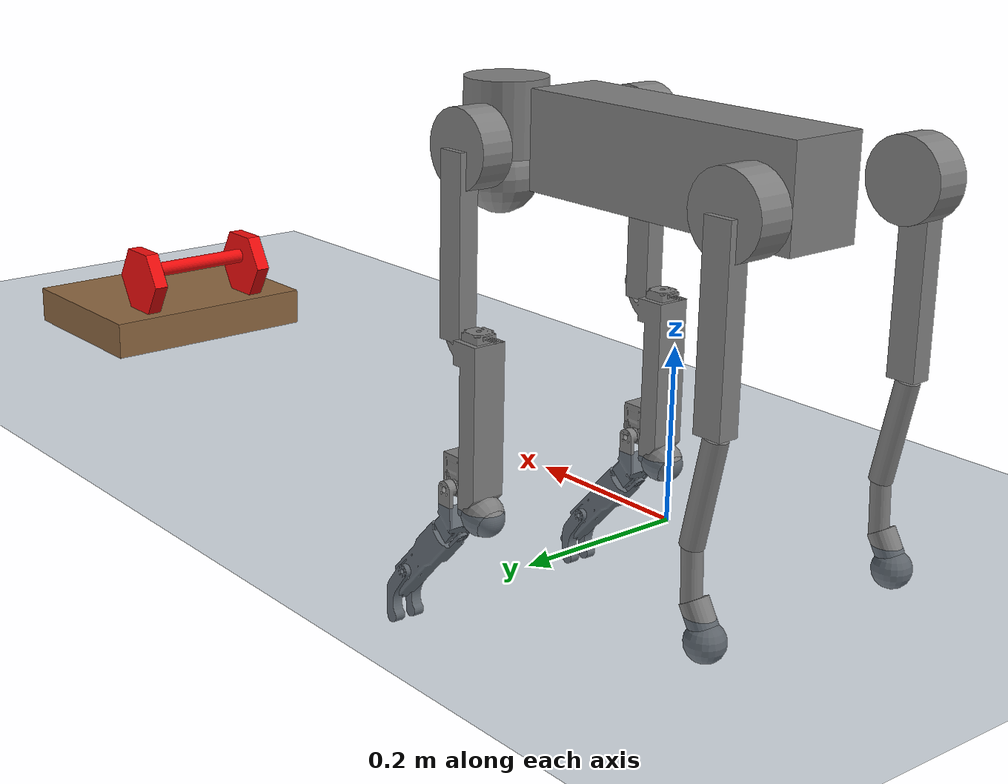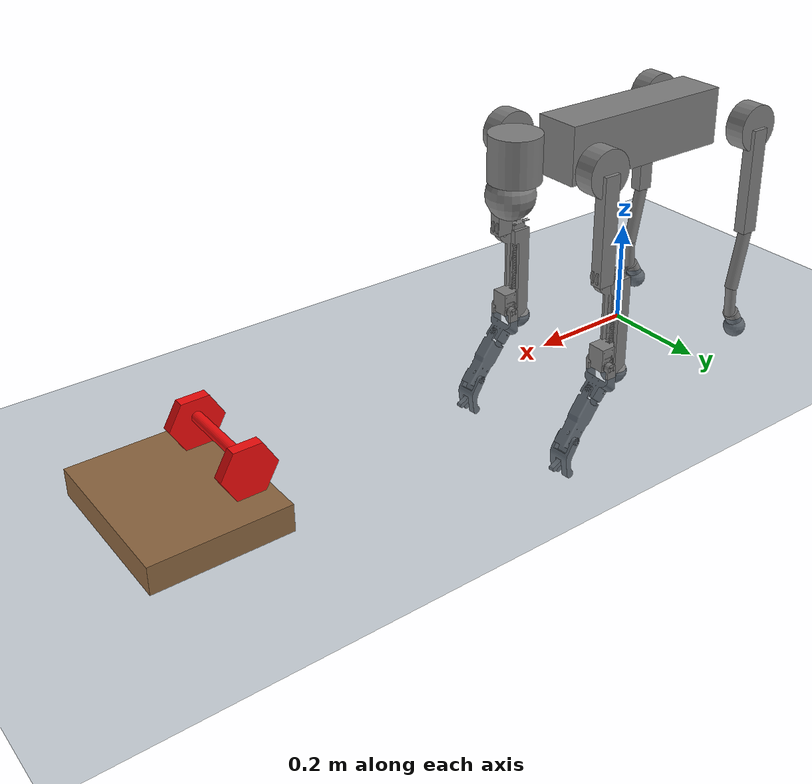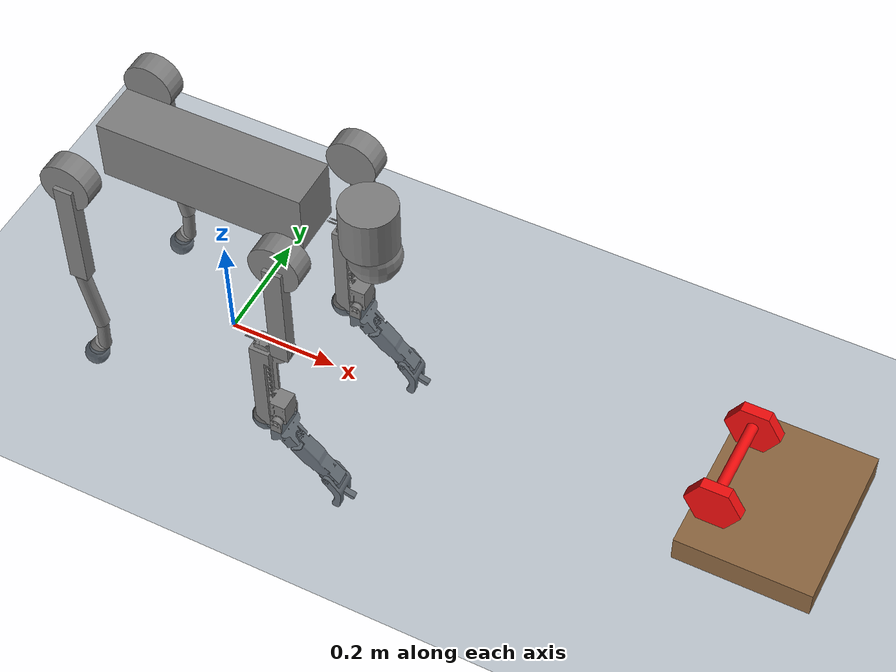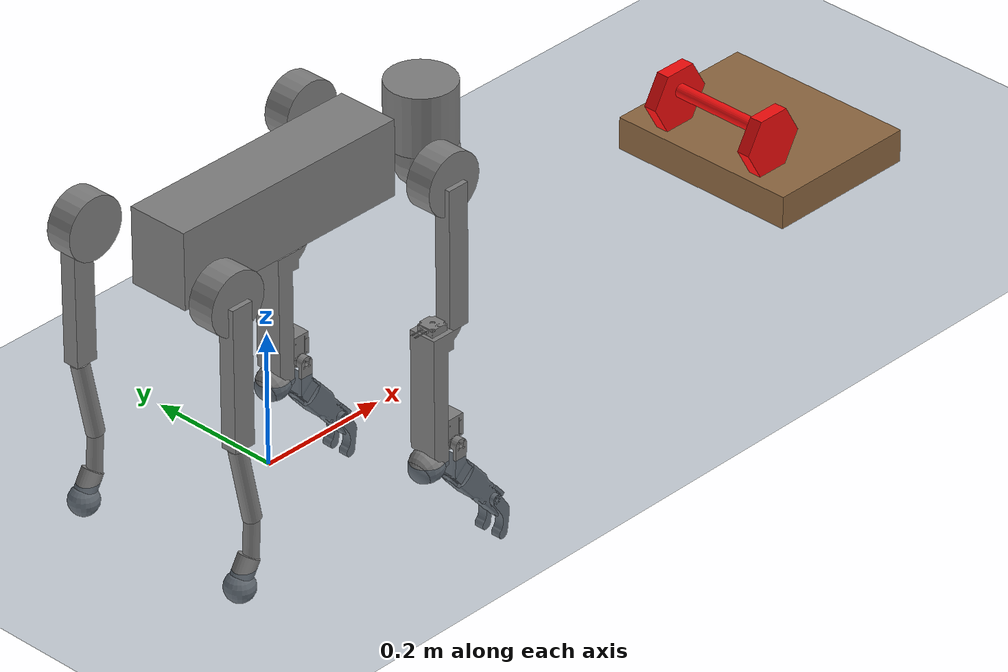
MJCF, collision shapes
<mujoco model="go2_with_diy_leg">
  <compiler angle="radian" meshdir="../" autolimits="true" />

  <option timestep="0.002" integrator="implicitfast" iterations="10" /><default><geom contype="1" conaffinity="1" friction="0.8 0.02 0.01" /></default><visual><headlight diffuse="0.6 0.6 0.6" ambient="0.3 0.3 0.3" specular="0 0 0" /><rgba haze="0.15 0.25 0.35 1" /><global azimuth="120" elevation="-20" offwidth="1280" offheight="720" /></visual><asset>
    <mesh name="base" content_type="model/obj" file="go2_description/obj/base.obj" />
    <mesh name="hip" content_type="model/obj" file="go2_description/obj/hip.obj" />
    <mesh name="thigh" content_type="model/obj" file="go2_description/obj/thigh.obj" />
    <mesh name="base_link" content_type="model/stl" file="meshes/base_link.STL" />
    <mesh name="link1" content_type="model/stl" file="meshes/link1.STL" />
    <mesh name="link2" content_type="model/stl" file="meshes/link2.STL" />
    <mesh name="link3" content_type="model/stl" file="meshes/link3.STL" />
    <mesh name="link4" content_type="model/stl" file="meshes/link4.STL" />
    <mesh name="foot" content_type="model/obj" file="go2_description/obj/foot.obj" scale="1.3 1.3 1.3" />
    <mesh name="thigh_mirror" content_type="model/obj" file="go2_description/obj/thigh_mirror.obj" />
    <mesh name="calf" content_type="model/obj" file="go2_description/obj/calf.obj" />
    <mesh name="foot1" content_type="model/obj" file="go2_description/obj/foot.obj" />
    <mesh name="calf_mirror" content_type="model/obj" file="go2_description/obj/calf_mirror.obj" />
  <texture type="skybox" builtin="gradient" rgb1="0.3 0.5 0.7" rgb2="0 0 0" width="512" height="3072" /><texture type="2d" name="groundplane" builtin="checker" mark="edge" rgb1="0.2 0.3 0.4" rgb2="0.1 0.2 0.3" markrgb="0.8 0.8 0.8" width="300" height="300" /><material name="groundplane" texture="groundplane" texuniform="true" texrepeat="5 5" reflectance="0.2" /><mesh name="hex_weight" file="/home/taie/Desktop/dog/mjc/hex_weight.stl" scale="1 1 0.33" /></asset>

  <worldbody>
    <geom name="floor" type="plane" size="0 0 0.05" material="groundplane" friction="0.8 0.02 0.01" /><light pos="0 0 1.5" dir="0 0 -1" directional="true" diffuse="0.8 0.8 0.8" specular="0.3 0.3 0.3" castshadow="true" /><body name="base" pos="0 0 0.4">
      <freejoint name="root" /><site name="imu" pos="-0.02557 0 0.04232" size="0.01" rgba="1 0 0 1" /><inertial pos="0.021112 0 -0.005366" quat="-0.000543471 0.713435 -0.00173769 0.700719" mass="6.921" diaginertia="0.107027 0.0980771 0.0244531" />
      <geom type="mesh" contype="0" conaffinity="0" group="1" density="0" mesh="base" />
      <geom size="0.1881 0.04675 0.057" type="box" />
      <body name="Head_upper" pos="0.285 0 0.01">
        <inertial pos="0 0 0" mass="0.001" diaginertia="9.6e-06 9.6e-06 9.6e-06" />
        <geom size="0.05 0.045" type="cylinder" />
        <body name="Head_lower" pos="0.008 0 -0.07">
          <inertial pos="0 0 0" mass="0.001" diaginertia="9.6e-06 9.6e-06 9.6e-06" />
          <geom size="0.047" />
        </body>
      <camera name="head_cam" pos="0.05 0 0.0" xyaxes="0 -1 0  0.574 0 0.819" fovy="75" /></body>
      <body name="FL_hip" pos="0.1934 0.0465 0">
        <inertial pos="-0.0054 0.00194 -0.000105" quat="0.497014 0.499245 0.505462 0.498237" mass="0.678" diaginertia="0.00088403 0.000596003 0.000479967" />
        <joint name="FL_hip_joint" pos="0 0 0" axis="1 0 0" range="-1.0472 1.0472" actuatorfrcrange="-23.7 23.7" />
        <geom type="mesh" contype="0" conaffinity="0" group="1" density="0" mesh="hip" />
        <geom size="0.046 0.02" pos="0 0.08 0" quat="0.707107 0.707107 0 0" type="cylinder" />
        <body name="FL_thigh" pos="0 0.0955 0">
          <inertial pos="-0.00374 -0.0223 -0.0327" quat="0.829533 0.0847635 -0.0200632 0.551623" mass="1.152" diaginertia="0.00594973 0.00584149 0.000878787" />
          <joint name="FL_thigh_joint" pos="0 0 0" axis="0 1 0" range="-1.5708 3.4907" actuatorfrcrange="-23.7 23.7" />
          <geom type="mesh" contype="0" conaffinity="0" group="1" density="0" mesh="thigh" />
          <geom size="0.1065 0.01225 0.017" pos="0 0 -0.1065" quat="0.707107 0 0.707107 0" type="box" />
          <body name="FL_diy_base_link" pos="0 -0.002 -0.212" quat="0.499998 0.5 0.5 -0.500002">
            <inertial pos="0.0943169 -0.0378878 1.09283e-07" quat="0.0343646 0.706271 -0.0343582 0.706272" mass="0.209324" diaginertia="0.000751999 0.000745837 6.62757e-05" />
            <joint name="FL_calf_joint" pos="0 0 0" axis="0 0 1" range="0.99 2.82" actuatorfrcrange="-45.43 45.43" />
            <geom type="mesh" contype="0" conaffinity="0" group="1" density="0" mesh="base_link" />
            <geom type="mesh" mesh="base_link" />
            <body name="FL_diy_link1" pos="0.022502 -0.034022 0">
              <inertial pos="0.129921 0.0176942 6.16693e-05" quat="0.107055 0.681122 -0.151292 0.708324" mass="0.0589547" diaginertia="1.49592e-05 1.38269e-05 1.14707e-05" />
              <joint name="FL_diy_joint1" pos="0 0 0" axis="-0.999999 -0.0012292 0" type="slide" range="0 0.105" actuatorfrcrange="-100 100" />
              <geom type="mesh" contype="0" conaffinity="0" group="1" density="0" mesh="link1" />
              <geom type="mesh" mesh="link1" />
              <body name="FL_diy_link2" pos="0.14708 0.022931 -0.0291">
                <inertial pos="0.040605 0.0074292 0.029" quat="0.629725 0 0 0.776818" mass="0.049272" diaginertia="2.51507e-05 1.61633e-05 1.4998e-05" />
                <joint name="FL_diy_joint2" pos="0 0 0" axis="0 0 -1" range="-2.2 0.08" actuatorfrcrange="-100 100" />
                <geom type="mesh" contype="0" conaffinity="0" group="1" density="0" mesh="link2" />
                <geom type="mesh" mesh="link2" />
                <body name="FL_diy_link3" pos="0.045837 0.027894 0.029">
                  <inertial pos="0.0663378 0.0361309 -0.00488817" quat="-0.218921 0.689393 0.240122 0.64742" mass="0.0862103" diaginertia="9.81448e-05 9.49698e-05 1.42291e-05" />
                  <joint name="FL_diy_joint3" pos="0 0 0" axis="-0.657198 0.753718 0" range="-1.2 1.2" actuatorfrcrange="-100 100" />
                  <geom type="mesh" contype="0" conaffinity="0" group="1" density="0" mesh="link3" />
                  <geom type="mesh" mesh="link3" />
                  <body name="FL_diy_link4" pos="0.083867 0.052256 -0.024248">
                    <inertial pos="0.0360357 0.0162094 0.0156288" quat="-0.0502735 0.722094 0.0766533 0.685695" mass="0.0264311" diaginertia="1.15771e-05 1.13017e-05 1.67229e-06" />
                    <joint name="FL_diy_joint4" pos="0 0 0" axis="0.047892 0.041759 0.997979" range="0.2 2.3" actuatorfrcrange="-100 100" />
                    <geom type="mesh" contype="0" conaffinity="0" group="1" density="0" mesh="link4" />
                    <geom type="mesh" mesh="link4" />
                  </body>
                </body>
              </body>
            </body>
            <body name="FL_diy_foot" pos="0.196 -0.045 0" quat="-0.0735497 -0.07355 0.703273 0.70327">
              <inertial pos="0 0 0" mass="0.04" diaginertia="9.6e-06 9.6e-06 9.6e-06" />
              <geom type="mesh" contype="0" conaffinity="0" group="1" density="0" mesh="foot" />
              <geom size="0.025" />
            </body>
          </body>
        </body>
        <body name="FL_thigh_rotor" pos="0 -0.00015 0">
          <inertial pos="0 0 0" quat="0.707107 0 0 0.707107" mass="0.089" diaginertia="0.000111842 5.9647e-05 5.9647e-05" />
        </body>
      </body>
      <body name="FL_hip_rotor" pos="0.11215 0.04675 0">
        <inertial pos="0 0 0" mass="0.089" diaginertia="0.000111842 5.9647e-05 5.9647e-05" />
      </body>
      <body name="FR_hip" pos="0.1934 -0.0465 0">
        <inertial pos="-0.0054 -0.00194 -0.000105" quat="0.498237 0.505462 0.499245 0.497014" mass="0.678" diaginertia="0.00088403 0.000596003 0.000479967" />
        <joint name="FR_hip_joint" pos="0 0 0" axis="1 0 0" range="-1.0472 1.0472" actuatorfrcrange="-23.7 23.7" />
        <geom quat="4.63268e-05 1 0 0" type="mesh" contype="0" conaffinity="0" group="1" density="0" mesh="hip" />
        <geom size="0.046 0.02" pos="0 -0.08 0" quat="0.707107 0.707107 0 0" type="cylinder" />
        <body name="FR_thigh" pos="0 -0.0955 0">
          <inertial pos="-0.00374 0.0223 -0.0327" quat="0.551623 -0.0200632 0.0847635 0.829533" mass="1.152" diaginertia="0.00594973 0.00584149 0.000878787" />
          <joint name="FR_thigh_joint" pos="0 0 0" axis="0 1 0" range="-1.5708 3.4907" actuatorfrcrange="-23.7 23.7" />
          <geom type="mesh" contype="0" conaffinity="0" group="1" density="0" mesh="thigh_mirror" />
          <geom size="0.1065 0.01225 0.017" pos="0 0 -0.1065" quat="0.707107 0 0.707107 0" type="box" />
          <body name="diy_base_link" pos="0 0.002 -0.212" quat="0.499998 0.5 0.5 -0.500002">
            <inertial pos="0.0943169 -0.0378878 1.09283e-07" quat="0.0343646 0.706271 -0.0343582 0.706272" mass="0.209324" diaginertia="0.000751999 0.000745837 6.62757e-05" />
            <joint name="FR_calf_joint" pos="0 0 0" axis="0 0 1" range="0.99 2.82" actuatorfrcrange="-45.43 45.43" />
            <geom type="mesh" contype="0" conaffinity="0" group="1" density="0" mesh="base_link" />
            <geom type="mesh" mesh="base_link" />
            <body name="diy_link1" pos="0.022502 -0.034022 0">
              <inertial pos="0.129921 0.0176942 6.16693e-05" quat="0.107055 0.681122 -0.151292 0.708324" mass="0.0589547" diaginertia="1.49592e-05 1.38269e-05 1.14707e-05" />
              <joint name="diy_joint1" pos="0 0 0" axis="-0.999999 -0.0012292 0" type="slide" range="0 0.105" actuatorfrcrange="-100 100" />
              <geom type="mesh" contype="0" conaffinity="0" group="1" density="0" mesh="link1" />
              <geom type="mesh" mesh="link1" />
              <body name="diy_link2" pos="0.14708 0.022931 -0.0291">
                <inertial pos="0.040605 0.0074292 0.029" quat="0.629725 0 0 0.776818" mass="0.049272" diaginertia="2.51507e-05 1.61633e-05 1.4998e-05" />
                <joint name="diy_joint2" pos="0 0 0" axis="0 0 -1" range="-2.2 0.08" actuatorfrcrange="-100 100" />
                <geom type="mesh" contype="0" conaffinity="0" group="1" density="0" mesh="link2" />
                <geom type="mesh" mesh="link2" />
                <body name="diy_link3" pos="0.045837 0.027894 0.029">
                  <inertial pos="0.0663378 0.0361309 -0.00488817" quat="-0.218921 0.689393 0.240122 0.64742" mass="0.0862103" diaginertia="9.81448e-05 9.49698e-05 1.42291e-05" />
                  <joint name="diy_joint3" pos="0 0 0" axis="-0.657198 0.753718 0" range="-1.2 1.2" actuatorfrcrange="-100 100" />
                  <geom type="mesh" contype="0" conaffinity="0" group="1" density="0" mesh="link3" />
                  <geom type="mesh" mesh="link3" />
                  <body name="diy_link4" pos="0.083867 0.052256 -0.024248">
                    <inertial pos="0.0360357 0.0162094 0.0156288" quat="-0.0502735 0.722094 0.0766533 0.685695" mass="0.0264311" diaginertia="1.15771e-05 1.13017e-05 1.67229e-06" />
                    <joint name="diy_joint4" pos="0 0 0" axis="0.047892 0.041759 0.997979" range="0.2 2.3" actuatorfrcrange="-100 100" />
                    <geom type="mesh" contype="0" conaffinity="0" group="1" density="0" mesh="link4" />
                    <geom type="mesh" mesh="link4" />
                  </body>
                </body>
              </body>
            </body>
            <body name="FR_diy_foot" pos="0.196 -0.045 0" quat="-0.0735497 -0.07355 0.703273 0.70327">
              <inertial pos="0 0 0" mass="0.04" diaginertia="9.6e-06 9.6e-06 9.6e-06" />
              <geom type="mesh" contype="0" conaffinity="0" group="1" density="0" mesh="foot" />
              <geom size="0.025" />
            </body>
          </body>
        </body>
        <body name="FR_thigh_rotor" pos="0 0.00015 0">
          <inertial pos="0 0 0" quat="0.707107 0 0 0.707107" mass="0.089" diaginertia="0.000111842 5.9647e-05 5.9647e-05" />
        </body>
      </body>
      <body name="FR_hip_rotor" pos="0.11215 -0.04675 0">
        <inertial pos="0 0 0" mass="0.089" diaginertia="0.000111842 5.9647e-05 5.9647e-05" />
      </body>
      <body name="RL_hip" pos="-0.1934 0.0465 0">
        <inertial pos="0.0054 0.00194 -0.000105" quat="0.505462 0.498237 0.497014 0.499245" mass="0.678" diaginertia="0.00088403 0.000596003 0.000479967" />
        <joint name="RL_hip_joint" pos="0 0 0" axis="1 0 0" range="-1.0472 1.0472" actuatorfrcrange="-23.7 23.7" />
        <geom quat="4.63268e-05 0 1 0" type="mesh" contype="0" conaffinity="0" group="1" density="0" mesh="hip" />
        <geom size="0.046 0.02" pos="0 0.08 0" quat="0.707107 0.707107 0 0" type="cylinder" />
        <body name="RL_thigh" pos="0 0.0955 0">
          <inertial pos="-0.00374 -0.0223 -0.0327" quat="0.829533 0.0847635 -0.0200632 0.551623" mass="1.152" diaginertia="0.00594973 0.00584149 0.000878787" />
          <joint name="RL_thigh_joint" pos="0 0 0" axis="0 1 0" range="-0.5236 4.5379" actuatorfrcrange="-23.7 23.7" />
          <geom type="mesh" contype="0" conaffinity="0" group="1" density="0" mesh="thigh" />
          <geom size="0.1065 0.01225 0.017" pos="0 0 -0.1065" quat="0.707107 0 0.707107 0" type="box" />
          <body name="RL_calf" pos="0 0 -0.213">
            <inertial pos="0.00548 -0.000975 -0.115" quat="0.715503 -0.00296111 -0.00858046 0.698551" mass="0.154" diaginertia="0.00110008 0.00108027 3.25534e-05" />
            <joint name="RL_calf_joint" pos="0 0 0" axis="0 1 0" range="-2.7227 -0.83776" actuatorfrcrange="-45.43 45.43" />
            <geom type="mesh" contype="0" conaffinity="0" group="1" density="0" mesh="calf" />
            <geom size="0.013 0.06" pos="0.01 0 -0.06" quat="0.995004 0 -0.0998334 0" type="cylinder" />
            <body name="RL_calflower" pos="0.02 0 -0.148" quat="0.999688 0 0.0249974 0">
              <geom size="0.011 0.0325" type="cylinder" />
              <body name="RL_calflower1" pos="-0.01 0 -0.04" quat="0.971338 0 0.237703 0">
                <geom size="0.0155 0.015" type="cylinder" />
              </body>
            </body>
            <body name="RL_foot" pos="0 0 -0.213">
              <inertial pos="0 0 0" mass="0.04" diaginertia="9.6e-06 9.6e-06 9.6e-06" />
              <geom type="mesh" contype="0" conaffinity="0" group="1" density="0" mesh="foot1" />
              <geom size="0.022" pos="-0.002 0 0" />
            </body>
          </body>
          <body name="RL_calf_rotor" pos="0 -0.03235 0">
            <inertial pos="0 0 0" quat="0.707107 0 0 0.707107" mass="0.089" diaginertia="0.000111842 5.9647e-05 5.9647e-05" />
          </body>
        </body>
        <body name="RL_thigh_rotor" pos="0 -0.00015 0">
          <inertial pos="0 0 0" quat="0.707107 0 0 0.707107" mass="0.089" diaginertia="0.000111842 5.9647e-05 5.9647e-05" />
        </body>
      </body>
      <body name="RL_hip_rotor" pos="-0.11215 0.04675 0">
        <inertial pos="0 0 0" mass="0.089" diaginertia="0.000111842 5.9647e-05 5.9647e-05" />
      </body>
      <body name="RR_hip" pos="-0.1934 -0.0465 0">
        <inertial pos="0.0054 -0.00194 -0.000105" quat="0.499245 0.497014 0.498237 0.505462" mass="0.678" diaginertia="0.00088403 0.000596003 0.000479967" />
        <joint name="RR_hip_joint" pos="0 0 0" axis="1 0 0" range="-1.0472 1.0472" actuatorfrcrange="-23.7 23.7" />
        <geom quat="2.14617e-09 4.63268e-05 4.63268e-05 -1" type="mesh" contype="0" conaffinity="0" group="1" density="0" mesh="hip" />
        <geom size="0.046 0.02" pos="0 -0.08 0" quat="0.707107 0.707107 0 0" type="cylinder" />
        <body name="RR_thigh" pos="0 -0.0955 0">
          <inertial pos="-0.00374 0.0223 -0.0327" quat="0.551623 -0.0200632 0.0847635 0.829533" mass="1.152" diaginertia="0.00594973 0.00584149 0.000878787" />
          <joint name="RR_thigh_joint" pos="0 0 0" axis="0 1 0" range="-0.5236 4.5379" actuatorfrcrange="-23.7 23.7" />
          <geom type="mesh" contype="0" conaffinity="0" group="1" density="0" mesh="thigh_mirror" />
          <geom size="0.1065 0.01225 0.017" pos="0 0 -0.1065" quat="0.707107 0 0.707107 0" type="box" />
          <body name="RR_calf" pos="0 0 -0.213">
            <inertial pos="0.00548 0.000975 -0.115" quat="0.698551 -0.00858046 -0.00296111 0.715503" mass="0.154" diaginertia="0.00110008 0.00108027 3.25534e-05" />
            <joint name="RR_calf_joint" pos="0 0 0" axis="0 1 0" range="-2.7227 -0.83776" actuatorfrcrange="-45.43 45.43" />
            <geom type="mesh" contype="0" conaffinity="0" group="1" density="0" mesh="calf_mirror" />
            <geom size="0.013 0.06" pos="0.01 0 -0.06" quat="0.995004 0 -0.0998334 0" type="cylinder" />
            <body name="RR_calflower" pos="0.02 0 -0.148" quat="0.999688 0 0.0249974 0">
              <geom size="0.011 0.0325" type="cylinder" />
              <body name="RR_calflower1" pos="-0.01 0 -0.04" quat="0.971338 0 0.237703 0">
                <geom size="0.0155 0.015" type="cylinder" />
              </body>
            </body>
            <body name="RR_foot" pos="0 0 -0.213">
              <inertial pos="0 0 0" mass="0.04" diaginertia="9.6e-06 9.6e-06 9.6e-06" />
              <geom type="mesh" contype="0" conaffinity="0" group="1" density="0" mesh="foot" />
              <geom size="0.022" pos="-0.002 0 0" />
            </body>
          </body>
          <body name="RR_calf_rotor" pos="0 0.03235 0">
            <inertial pos="0 0 0" quat="0.707107 0 0 0.707107" mass="0.089" diaginertia="0.000111842 5.9647e-05 5.9647e-05" />
          </body>
        </body>
        <body name="RR_thigh_rotor" pos="0 0.00015 0">
          <inertial pos="0 0 0" quat="0.707107 0 0 0.707107" mass="0.089" diaginertia="0.000111842 5.9647e-05 5.9647e-05" />
        </body>
      </body>
      <body name="RR_hip_rotor" pos="-0.11215 -0.04675 0">
        <inertial pos="0 0 0" mass="0.089" diaginertia="0.000111842 5.9647e-05 5.9647e-05" />
      </body>
      <body name="imu" pos="-0.02557 0 0.04232">
        <inertial pos="0 0 0" mass="0" diaginertia="0 0 0" />
      </body>
      <body name="radar" pos="0.28945 0 -0.046825" quat="0.131316 0 0.991341 0">
        <inertial pos="0 0 0" mass="0" diaginertia="0 0 0" />
      </body>
      <body name="front_camera" pos="0.32715 -3e-05 0.04297" />
    </body>
  <body name="target_platform" pos="1.0 0.05 0.025"><geom name="platform_geom" type="box" size="0.120 0.150 0.025" rgba="0.55 0.40 0.25 1" friction="1.0 0.05 0.01" /></body><body name="target_cube" pos="0.92 0.05 0.095" euler="0 0 1.5707963"><freejoint name="target_cube_free" /><geom name="target_handle" type="cylinder" size="0.010 0.075" fromto="-0.075 0 0.012  0.075 0 0.012" rgba="0.95 0.05 0.05 1" mass="0.02" friction="3.0 0.20 0.05" /><geom name="target_weight_l" type="mesh" mesh="hex_weight" pos="-0.085 0 0" quat="0.5 -0.5 0.5 -0.5" rgba="0.95 0.05 0.05 1" mass="0.09" friction="3.0 0.20 0.05" /><geom name="target_weight_r" type="mesh" mesh="hex_weight" pos="0.085 0 0" quat="0.5 -0.5 0.5 -0.5" rgba="0.95 0.05 0.05 1" mass="0.09" friction="3.0 0.20 0.05" /></body></worldbody>
<actuator><position name="FL_hip_joint_actuator" joint="FL_hip_joint" kp="25.0" kv="0.5" forcerange="-50 50" /><position name="FR_hip_joint_actuator" joint="FR_hip_joint" kp="25.0" kv="0.5" forcerange="-50 50" /><position name="RL_hip_joint_actuator" joint="RL_hip_joint" kp="25.0" kv="0.5" forcerange="-50 50" /><position name="RR_hip_joint_actuator" joint="RR_hip_joint" kp="25.0" kv="0.5" forcerange="-50 50" /><position name="FL_thigh_joint_actuator" joint="FL_thigh_joint" kp="25.0" kv="0.5" forcerange="-50 50" /><position name="FR_thigh_joint_actuator" joint="FR_thigh_joint" kp="25.0" kv="0.5" forcerange="-50 50" /><position name="RL_thigh_joint_actuator" joint="RL_thigh_joint" kp="25.0" kv="0.5" forcerange="-50 50" /><position name="RR_thigh_joint_actuator" joint="RR_thigh_joint" kp="25.0" kv="0.5" forcerange="-50 50" /><position name="FL_calf_joint_actuator" joint="FL_calf_joint" kp="25.0" kv="0.5" forcerange="-50 50" /><position name="FR_calf_joint_actuator" joint="FR_calf_joint" kp="25.0" kv="0.5" forcerange="-50 50" /><position name="RL_calf_joint_actuator" joint="RL_calf_joint" kp="25.0" kv="0.5" forcerange="-50 50" /><position name="RR_calf_joint_actuator" joint="RR_calf_joint" kp="25.0" kv="0.5" forcerange="-50 50" /><position name="FL_diy_joint1_actuator" joint="FL_diy_joint1" kp="20000.0" kv="200.0" forcerange="-300 300" /><position name="FL_diy_joint2_actuator" joint="FL_diy_joint2" kp="25.0" kv="0.5" forcerange="-100 100" /><position name="FL_diy_joint3_actuator" joint="FL_diy_joint3" kp="25.0" kv="0.5" forcerange="-100 100" /><position name="FL_diy_joint4_actuator" joint="FL_diy_joint4" kp="25.0" kv="0.5" forcerange="-100 100" /><position name="diy_joint1_actuator" joint="diy_joint1" kp="20000.0" kv="200.0" forcerange="-300 300" /><position name="diy_joint2_actuator" joint="diy_joint2" kp="25.0" kv="0.5" forcerange="-100 100" /><position name="diy_joint3_actuator" joint="diy_joint3" kp="25.0" kv="0.5" forcerange="-100 100" /><position name="diy_joint4_actuator" joint="diy_joint4" kp="25.0" kv="0.5" forcerange="-100 100" /></actuator><sensor><gyro name="gyro" site="imu" /><accelerometer name="accel" site="imu" /><framequat name="imu_quat" objtype="site" objname="imu" /></sensor><keyframe><key name="home" qpos="0 0 0.4 1 0 0 0 0 0.56 1.466 0.0525 -1.06 0 1.25 0 0.56 1.466 0.0525 -1.06 0 1.25 0 0.401 -1.215 0 0.401 -1.215 0.92 0.05 0.095 0.707107 0 0 0.707107" ctrl="0 0 0 0 0.56 0.56 0.401 0.401 1.466 1.466 -1.215 -1.215 0.0525 -1.06 0 1.25 0.0525 -1.06 0 1.25"/></keyframe></mujoco>
